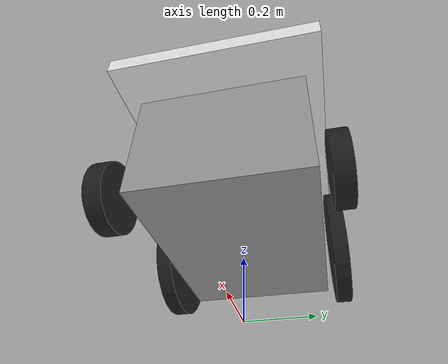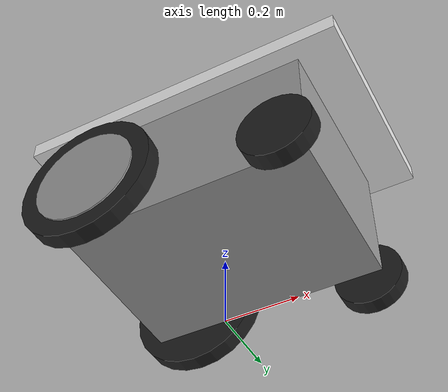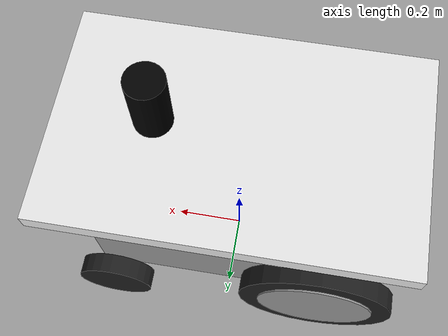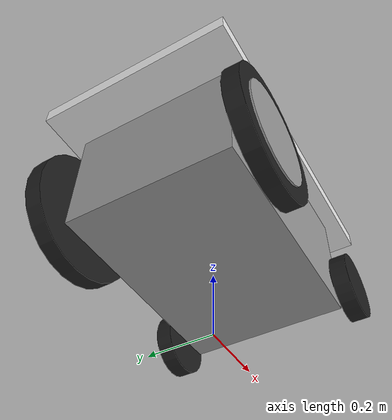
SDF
<sdf version='1.9'>
  <model name='mm'>
    <link name='robot_footprint'>
      <inertial>
        <pose>0.00061100862541756 0 0.4757246846487511 0 0 0</pose>
        <mass>40.113999999999997</mass>
        <inertia>
          <ixx>0.83339178341726061</ixx>
          <ixy>0</ixy>
          <ixz>-0.0062322879792591108</ixz>
          <iyy>0.83864645759585166</iyy>
          <iyz>0</iyz>
          <izz>0.206254674178591</izz>
        </inertia>
      </inertial>
      <collision name='robot_footprint_fixed_joint_lump__collision_collision'>
        <pose>0 0 0.6 0 0 0</pose>
        <geometry>
          <box>
            <size>0.95 0.6 0.05</size>
          </box>
        </geometry>
      </collision>
      <collision name='robot_footprint_fixed_joint_lump__collision_collision_1'>
        <pose>0 0 0.4 0 0 0</pose>
        <geometry>
          <box>
            <size>0.7 0.5 0.35</size>
          </box>
        </geometry>
      </collision>
      <collision name='robot_footprint_fixed_joint_lump__lidar_link_collision_2'>
        <pose>0.215 0 0.73 0 0 0</pose>
        <geometry>
          <cylinder>
            <length>0.17999999999999999</length>
            <radius>0.050799999999999998</radius>
          </cylinder>
        </geometry>
        <surface>
          <contact>
            <ode/>
          </contact>
          <friction>
            <ode/>
          </friction>
        </surface>
      </collision>
      <visual name='robot_footprint_fixed_joint_lump__chassis_visual_visual'>
        <pose>0 0 0.6 0 0 0</pose>
        <geometry>
          <box>
            <size>0.95 0.6 0.05</size>
          </box>
        </geometry>
        <material>
          <script>
            <name>Gazebo/White</name>
            <uri>file://media/materials/scripts/gazebo.material</uri>
          </script>
        </material>
      </visual>
      <visual name='robot_footprint_fixed_joint_lump__box_visual_visual_1'>
        <pose>0 0 0.4 0 0 0</pose>
        <geometry>
          <box>
            <size>0.7 0.5 0.35</size>
          </box>
        </geometry>
        <material>
          <script>
            <name>Gazebo/Grey</name>
            <uri>file://media/materials/scripts/gazebo.material</uri>
          </script>
        </material>
      </visual>
      <visual name='robot_footprint_fixed_joint_lump__lidar_link_visual_2'>
        <pose>0.215 0 0.73 0 0 0</pose>
        <geometry>
          <cylinder>
            <length>0.17999999999999999</length>
            <radius>0.050799999999999998</radius>
          </cylinder>
        </geometry>
        <material>
          <diffuse>0 0 0 1</diffuse>
          <ambient>0 0 0 1</ambient>
        </material>
      </visual>

      <gravity>true</gravity>

    </link>
    <joint name='back_left_wheel_joint' type='revolute'>
      <pose relative_to='robot_footprint'>-0.25 0.3 0.35 0 0 0</pose>
      <parent>robot_footprint</parent>
      <child>back_left_wheel</child>
      <axis>
        <xyz>0 1 0</xyz>
        <limit>
          <lower>-10000000000000000</lower>
          <upper>10000000000000000</upper>
        </limit>
        <dynamics>
          <damping>1</damping>
          <friction>1</friction>
          <spring_reference>0</spring_reference>
          <spring_stiffness>0</spring_stiffness>
        </dynamics>
      </axis>
    </joint>
    <link name='back_left_wheel'>
      <pose relative_to='back_left_wheel_joint'>0 0 0 0 0 0</pose>
      <inertial>
        <pose>0 0 0 -5.762794389312105e-13 1.570700000002009 1.570699999999184</pose>
        <mass>0.5</mass>
        <inertia>
          <ixx>0.10000000000000001</ixx>
          <ixy>0</ixy>
          <ixz>0</ixz>
          <iyy>0.10000000000000001</iyy>
          <iyz>0</iyz>
          <izz>0.10000000000000001</izz>
        </inertia>
      </inertial>
      <collision name='back_left_wheel_collision'>
        <pose>0 0 0 0 1.570796326794897 1.5707</pose>
        <geometry>
          <cylinder>
            <length>0.050000000000000003</length>
            <radius>0.20000000000000001</radius>
          </cylinder>
        </geometry>
        <surface>
          <contact>
            <ode/>
          </contact>
          <friction>
            <ode/>
          </friction>
        </surface>
      </collision>
      <visual name='back_left_wheel_visual_visual'>
        <pose>0 0 0 0 1.570796326794897 1.5707</pose>
        <geometry>
          <cylinder>
            <length>0.050000000000000003</length>
            <radius>0.20000000000000001</radius>
          </cylinder>
        </geometry>
        <material>
          <script>
            <name>Gazebo/Black</name>
            <uri>file://media/materials/scripts/gazebo.material</uri>
          </script>
        </material>
      </visual>
    </link>
    <joint name='back_left_wheel_cover_joint' type='revolute'>
      <pose relative_to='back_left_wheel'>0 0.025 0 0 0 0</pose>
      <parent>back_left_wheel</parent>
      <child>back_left_wheel_cover</child>
      <axis>
        <xyz>0 1 0</xyz>
        <limit>
          <lower>-10000000000000000</lower>
          <upper>10000000000000000</upper>
        </limit>
        <dynamics>
          <spring_reference>0</spring_reference>
          <spring_stiffness>0</spring_stiffness>
        </dynamics>
      </axis>
    </joint>
    <link name='back_left_wheel_cover'>
      <pose relative_to='back_left_wheel_cover_joint'>0 0 0 0 0 0</pose>
      <inertial>
        <pose>0 0 0 -5.762794389312105e-13 1.570700000002009 1.570699999999184</pose>
        <mass>0.01</mass>
        <inertia>
          <ixx>0.10000000000000001</ixx>
          <ixy>0</ixy>
          <ixz>0</ixz>
          <iyy>0.10000000000000001</iyy>
          <iyz>0</iyz>
          <izz>0.10000000000000001</izz>
        </inertia>
      </inertial>
      <collision name='back_left_wheel_cover_collision'>
        <pose>0 0 0 0 1.570796326794897 1.5707</pose>
        <geometry>
          <cylinder>
            <length>0.01</length>
            <radius>0.14999999999999999</radius>
          </cylinder>
        </geometry>
        <surface>
          <contact>
            <ode/>
          </contact>
          <friction>
            <ode/>
          </friction>
        </surface>
      </collision>
      <visual name='back_left_wheel_cover_visual_visual'>
        <pose>0 0 0 0 1.570796326794897 1.5707</pose>
        <geometry>
          <cylinder>
            <length>0.01</length>
            <radius>0.14999999999999999</radius>
          </cylinder>
        </geometry>
        <material>
          <script>
            <name>Gazebo/Grey</name>
            <uri>file://media/materials/scripts/gazebo.material</uri>
          </script>
        </material>
      </visual>
    </link>
    <joint name='back_right_wheel_joint' type='revolute'>
      <pose relative_to='robot_footprint'>-0.25 -0.3 0.35 0 0 0</pose>
      <parent>robot_footprint</parent>
      <child>back_right_wheel</child>
      <axis>
        <xyz>0 1 0</xyz>
        <limit>
          <lower>-10000000000000000</lower>
          <upper>10000000000000000</upper>
        </limit>
        <dynamics>
          <damping>1</damping>
          <friction>1</friction>
          <spring_reference>0</spring_reference>
          <spring_stiffness>0</spring_stiffness>
        </dynamics>
      </axis>
    </joint>
    <link name='back_right_wheel'>
      <pose relative_to='back_right_wheel_joint'>0 0 0 0 0 0</pose>
      <inertial>
        <pose>0 0 0 -5.762794389312105e-13 1.570700000002009 1.570699999999184</pose>
        <mass>0.5</mass>
        <inertia>
          <ixx>0.10000000000000001</ixx>
          <ixy>0</ixy>
          <ixz>0</ixz>
          <iyy>0.10000000000000001</iyy>
          <iyz>0</iyz>
          <izz>0.10000000000000001</izz>
        </inertia>
      </inertial>
      <collision name='back_right_wheel_collision'>
        <pose>0 0 0 0 1.570796326794897 1.5707</pose>
        <geometry>
          <cylinder>
            <length>0.050000000000000003</length>
            <radius>0.20000000000000001</radius>
          </cylinder>
        </geometry>
        <surface>
          <contact>
            <ode/>
          </contact>
          <friction>
            <ode/>
          </friction>
        </surface>
      </collision>
      <visual name='back_right_wheel_visual_visual'>
        <pose>0 0 0 0 1.570796326794897 1.5707</pose>
        <geometry>
          <cylinder>
            <length>0.050000000000000003</length>
            <radius>0.20000000000000001</radius>
          </cylinder>
        </geometry>
        <material>
          <script>
            <name>Gazebo/Black</name>
            <uri>file://media/materials/scripts/gazebo.material</uri>
          </script>
        </material>
      </visual>
    </link>
    <joint name='back_right_wheel_cover_joint' type='revolute'>
      <pose relative_to='back_right_wheel'>0 -0.025 0 0 0 0</pose>
      <parent>back_right_wheel</parent>
      <child>back_right_wheel_cover</child>
      <axis>
        <xyz>0 1 0</xyz>
        <limit>
          <lower>-10000000000000000</lower>
          <upper>10000000000000000</upper>
        </limit>
        <dynamics>
          <damping>1</damping>
          <friction>1</friction>
          <spring_reference>0</spring_reference>
          <spring_stiffness>0</spring_stiffness>
        </dynamics>
      </axis>
    </joint>
    <link name='back_right_wheel_cover'>
      <pose relative_to='back_right_wheel_cover_joint'>0 0 0 0 0 0</pose>
      <inertial>
        <pose>0 0 0 -5.762794389312105e-13 1.570700000002009 1.570699999999184</pose>
        <mass>0.01</mass>
        <inertia>
          <ixx>0.10000000000000001</ixx>
          <ixy>0</ixy>
          <ixz>0</ixz>
          <iyy>0.10000000000000001</iyy>
          <iyz>0</iyz>
          <izz>0.10000000000000001</izz>
        </inertia>
      </inertial>
      <collision name='back_right_wheel_cover_collision'>
        <pose>0 0 0 0 1.570796326794897 1.5707</pose>
        <geometry>
          <cylinder>
            <length>0.01</length>
            <radius>0.14999999999999999</radius>
          </cylinder>
        </geometry>
        <surface>
          <contact>
            <ode/>
          </contact>
          <friction>
            <ode/>
          </friction>
        </surface>
      </collision>
      <visual name='back_right_wheel_cover_visual_visual'>
        <pose>0 0 0 0 1.570796326794897 1.5707</pose>
        <geometry>
          <cylinder>
            <length>0.01</length>
            <radius>0.14999999999999999</radius>
          </cylinder>
        </geometry>
        <material>
          <script>
            <name>Gazebo/Grey</name>
            <uri>file://media/materials/scripts/gazebo.material</uri>
          </script>
        </material>
      </visual>
    </link>
    <joint name='front_left_wheel_joint' type='revolute'>
      <pose relative_to='robot_footprint'>0.3 0.3 0.25 0 0 0</pose>
      <parent>robot_footprint</parent>
      <child>front_left_wheel</child>
      <axis>
        <xyz>0 1 0</xyz>
        <limit>
          <lower>-10000000000000000</lower>
          <upper>10000000000000000</upper>
        </limit>
        <dynamics>
          <damping>1</damping>
          <friction>1</friction>
          <spring_reference>0</spring_reference>
          <spring_stiffness>0</spring_stiffness>
        </dynamics>
      </axis>
    </joint>
    <link name='front_left_wheel'>
      <pose relative_to='front_left_wheel_joint'>0 0 0 0 0 0</pose>
      <inertial>
        <pose>0 0 0 -5.762794389312105e-13 1.570700000002009 1.570699999999184</pose>
        <mass>5</mass>
        <inertia>
          <ixx>0.10000000000000001</ixx>
          <ixy>0</ixy>
          <ixz>0</ixz>
          <iyy>0.10000000000000001</iyy>
          <iyz>0</iyz>
          <izz>0.10000000000000001</izz>
        </inertia>
      </inertial>
      <collision name='front_left_wheel_collision'>
        <pose>0 0 0 0 1.570796326794897 1.5707</pose>
        <geometry>
          <cylinder>
            <length>0.050000000000000003</length>
            <radius>0.10000000000000001</radius>
          </cylinder>
        </geometry>
        <surface>
          <contact>
            <ode/>
          </contact>
          <friction>
            <ode/>
          </friction>
        </surface>
      </collision>
      <visual name='front_left_wheel_visual_visual'>
        <pose>0 0 0 0 1.570796326794897 1.5707</pose>
        <geometry>
          <cylinder>
            <length>0.050000000000000003</length>
            <radius>0.10000000000000001</radius>
          </cylinder>
        </geometry>
        <material>
          <script>
            <name>Gazebo/Black</name>
            <uri>file://media/materials/scripts/gazebo.material</uri>
          </script>
        </material>
      </visual>
    </link>
    <joint name='front_right_wheel_joint' type='revolute'>
      <pose relative_to='robot_footprint'>0.3 -0.3 0.25 0 0 0</pose>
      <parent>robot_footprint</parent>
      <child>front_right_wheel</child>
      <axis>
        <xyz>0 1 0</xyz>
        <limit>
          <lower>-10000000000000000</lower>
          <upper>10000000000000000</upper>
        </limit>
        <dynamics>
          <damping>1</damping>
          <friction>1</friction>
          <spring_reference>0</spring_reference>
          <spring_stiffness>0</spring_stiffness>
        </dynamics>
      </axis>
    </joint>
    <link name='front_right_wheel'>
      <pose relative_to='front_right_wheel_joint'>0 0 0 0 0 0</pose>
      <inertial>
        <pose>0 0 0 -5.762794389312105e-13 1.570700000002009 1.570699999999184</pose>
        <mass>5</mass>
        <inertia>
          <ixx>0.10000000000000001</ixx>
          <ixy>0</ixy>
          <ixz>0</ixz>
          <iyy>0.10000000000000001</iyy>
          <iyz>0</iyz>
          <izz>0.10000000000000001</izz>
        </inertia>
      </inertial>
      <collision name='front_right_wheel_collision'>
        <pose>0 0 0 0 1.570796326794897 1.5707</pose>
        <geometry>
          <cylinder>
            <length>0.050000000000000003</length>
            <radius>0.10000000000000001</radius>
          </cylinder>
        </geometry>
        <surface>
          <contact>
            <ode/>
          </contact>
          <friction>
            <ode/>
          </friction>
        </surface>
      </collision>
      <visual name='front_right_wheel_visual_visual'>
        <pose>0 0 0 0 1.570796326794897 1.5707</pose>
        <geometry>
          <cylinder>
            <length>0.050000000000000003</length>
            <radius>0.10000000000000001</radius>
          </cylinder>
        </geometry>
        <material>
          <script>
            <name>Gazebo/Black</name>
            <uri>file://media/materials/scripts/gazebo.material</uri>
          </script>
        </material>
      </visual>
    </link>
    <static>false</static>

    <plugin filename="libignition-gazebo-diff-drive-system.so" name="ignition::gazebo::systems::DiffDrive">
    <left_joint>front_left_wheel_joint</left_joint>
    <right_joint>front_right_wheel_joint</right_joint>
    <wheel_separation>0.108</wheel_separation>
    <wheel_radius>0.012</wheel_radius>
    <odom_publish_frequency>100</odom_publish_frequency>
    <topic>/cmd_vel</topic>
    </plugin>

  </model>
</sdf>
